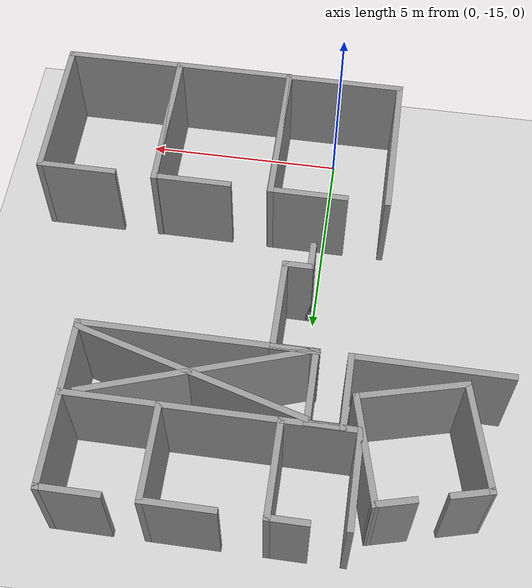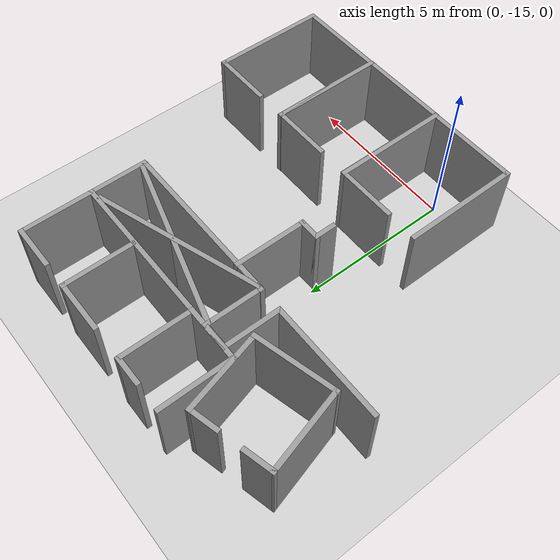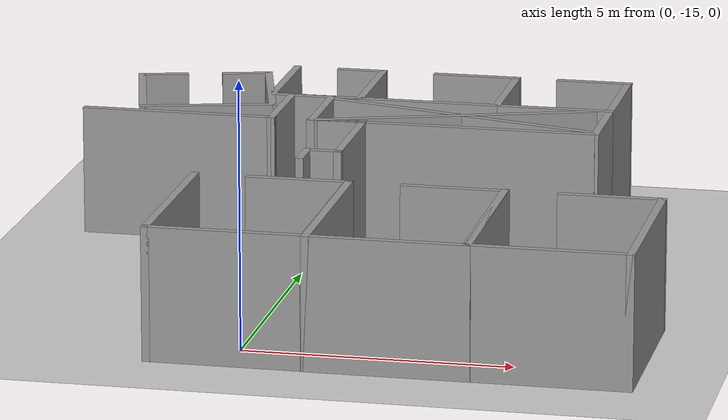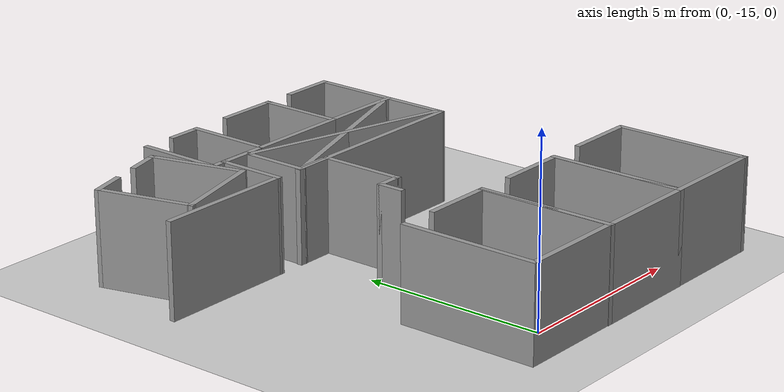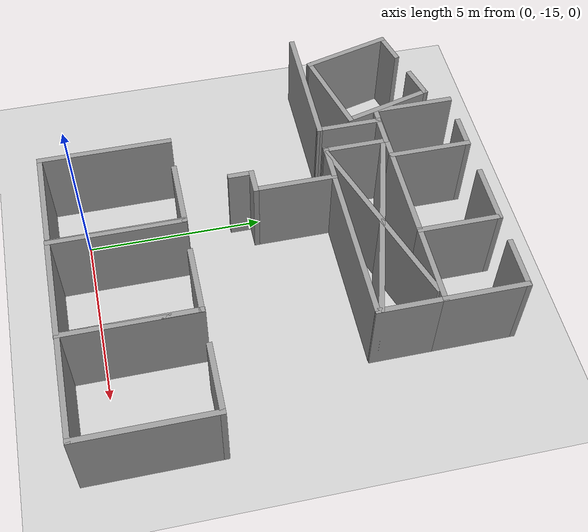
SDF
<sdf version="1.6">
 <world name="default">
  <model name="ground_plane">
   <static>1</static>
   <link name="link">
    <collision name="collision">
     <geometry><plane><normal>0 0 1</normal><size>100 100</size></plane></geometry>
     <surface><friction><ode><mu>100</mu><mu2>50</mu2></ode></friction></surface>
    </collision>
    <visual name="visual">
     <cast_shadows>0</cast_shadows>
     <geometry><plane><normal>0 0 1</normal><size>100 100</size></plane></geometry>
     <material>
      <script><uri>file://media/materials/scripts/gazebo.material</uri><name>Gazebo/Grey</name></script>
     </material>
    </visual>
   </link>
  </model>
  <model name="329_8">
   <pose>5.76303 -14.1144 0 0 -0 0</pose>
   <link name="Wall_0">
    <collision name="Wall_0_Collision">
     <geometry><box><size>3.81 0.15 2.5</size></box></geometry>
     <pose>0 0 1.25 0 -0 0</pose>
    </collision>
    <visual name="Wall_0_Visual">
     <pose>0 0 1.25 0 -0 0</pose>
     <geometry><box><size>3.81 0.15 2.5</size></box></geometry>
     <material>
      <script><uri>file://media/materials/scripts/gazebo.material</uri><name>Gazebo/Grey</name></script>
      <ambient>1 1 1 1</ambient>
     </material>
     <meta><layer>0</layer></meta>
    </visual>
    <pose>-1.449 0 0 0 -0 -1.5708</pose>
   </link>
   <link name="Wall_1">
    <collision name="Wall_1_Collision">
     <geometry><box><size>3.048 0.15 2.5</size></box></geometry>
     <pose>0 0 1.25 0 -0 0</pose>
    </collision>
    <visual name="Wall_1_Visual">
     <pose>0 0 1.25 0 -0 0</pose>
     <geometry><box><size>3.048 0.15 2.5</size></box></geometry>
     <material>
      <script><uri>file://media/materials/scripts/gazebo.material</uri><name>Gazebo/Grey</name></script>
      <ambient>1 1 1 1</ambient>
     </material>
     <meta><layer>0</layer></meta>
    </visual>
    <pose>-0 -1.83 0 0 -0 0</pose>
   </link>
   <link name="Wall_2">
    <collision name="Wall_2_Collision">
     <geometry><box><size>3.81 0.15 2.5</size></box></geometry>
     <pose>0 0 1.25 0 -0 0</pose>
    </collision>
    <visual name="Wall_2_Visual">
     <pose>0 0 1.25 0 -0 0</pose>
     <geometry><box><size>3.81 0.15 2.5</size></box></geometry>
     <material>
      <script><uri>file://media/materials/scripts/gazebo.material</uri><name>Gazebo/Grey</name></script>
      <ambient>1 1 1 1</ambient>
     </material>
     <meta><layer>0</layer></meta>
    </visual>
    <pose>1.449 0 0 0 -0 1.5708</pose>
   </link>
   <link name="Wall_5">
    <collision name="Wall_5_Collision">
     <geometry><box><size>2 0.15 2.5</size></box></geometry>
     <pose>0 0 1.25 0 -0 0</pose>
    </collision>
    <visual name="Wall_5_Visual">
     <pose>0 0 1.25 0 -0 0</pose>
     <geometry><box><size>2 0.15 2.5</size></box></geometry>
     <material>
      <script><uri>file://media/materials/scripts/gazebo.material</uri><name>Gazebo/Grey</name></script>
      <ambient>1 1 1 1</ambient>
     </material>
     <meta><layer>0</layer></meta>
    </visual>
    <pose>0.524 1.83 0 0 -0 3.14159</pose>
   </link>
   <static>1</static>
  </model>
  <model name="329_9">
   <pose>2.85575 -14.1248 0 0 -0 0</pose>
   <link name="Wall_0">
    <collision name="Wall_0_Collision">
     <geometry><box><size>3.81 0.15 2.5</size></box></geometry>
     <pose>0 0 1.25 0 -0 0</pose>
    </collision>
    <visual name="Wall_0_Visual">
     <pose>0 0 1.25 0 -0 0</pose>
     <geometry><box><size>3.81 0.15 2.5</size></box></geometry>
     <material>
      <script><uri>file://media/materials/scripts/gazebo.material</uri><name>Gazebo/Grey</name></script>
      <ambient>1 1 1 1</ambient>
     </material>
     <meta><layer>0</layer></meta>
    </visual>
    <pose>-1.449 0 0 0 -0 -1.5708</pose>
   </link>
   <link name="Wall_1">
    <collision name="Wall_1_Collision">
     <geometry><box><size>3.048 0.15 2.5</size></box></geometry>
     <pose>0 0 1.25 0 -0 0</pose>
    </collision>
    <visual name="Wall_1_Visual">
     <pose>0 0 1.25 0 -0 0</pose>
     <geometry><box><size>3.048 0.15 2.5</size></box></geometry>
     <material>
      <script><uri>file://media/materials/scripts/gazebo.material</uri><name>Gazebo/Grey</name></script>
      <ambient>1 1 1 1</ambient>
     </material>
     <meta><layer>0</layer></meta>
    </visual>
    <pose>-0 -1.83 0 0 -0 0</pose>
   </link>
   <link name="Wall_2">
    <collision name="Wall_2_Collision">
     <geometry><box><size>3.81 0.15 2.5</size></box></geometry>
     <pose>0 0 1.25 0 -0 0</pose>
    </collision>
    <visual name="Wall_2_Visual">
     <pose>0 0 1.25 0 -0 0</pose>
     <geometry><box><size>3.81 0.15 2.5</size></box></geometry>
     <material>
      <script><uri>file://media/materials/scripts/gazebo.material</uri><name>Gazebo/Grey</name></script>
      <ambient>1 1 1 1</ambient>
     </material>
     <meta><layer>0</layer></meta>
    </visual>
    <pose>1.449 0 0 0 -0 1.5708</pose>
   </link>
   <link name="Wall_5">
    <collision name="Wall_5_Collision">
     <geometry><box><size>2 0.15 2.5</size></box></geometry>
     <pose>0 0 1.25 0 -0 0</pose>
    </collision>
    <visual name="Wall_5_Visual">
     <pose>0 0 1.25 0 -0 0</pose>
     <geometry><box><size>2 0.15 2.5</size></box></geometry>
     <material>
      <script><uri>file://media/materials/scripts/gazebo.material</uri><name>Gazebo/Grey</name></script>
      <ambient>1 1 1 1</ambient>
     </material>
     <meta><layer>0</layer></meta>
    </visual>
    <pose>0.524 1.83 0 0 -0 3.14159</pose>
   </link>
   <static>1</static>
  </model>
  <model name="195_0">
   <pose>-2.77663 -6.09914 0 0 -0 0.254274</pose>
   <link name="Wall_52">
    <collision name="Wall_52_Collision">
     <geometry><box><size>2.667 0.15 2.5</size></box></geometry>
     <pose>0 0 1.25 0 -0 0</pose>
    </collision>
    <visual name="Wall_52_Visual">
     <pose>0 0 1.25 0 -0 0</pose>
     <geometry><box><size>2.667 0.15 2.5</size></box></geometry>
     <material>
      <script><uri>file://media/materials/scripts/gazebo.material</uri><name>Gazebo/Grey</name></script>
      <ambient>1 1 1 1</ambient>
     </material>
     <meta><layer>0</layer></meta>
    </visual>
    <pose>-0.000138 -1.2585 0 0 -0 0</pose>
   </link>
   <link name="Wall_53">
    <collision name="Wall_53_Collision">
     <geometry><box><size>2.667 0.15 2.5</size></box></geometry>
     <pose>0 0 1.25 0 -0 0</pose>
    </collision>
    <visual name="Wall_53_Visual">
     <pose>0 0 1.25 0 -0 0</pose>
     <geometry><box><size>2.667 0.15 2.5</size></box></geometry>
     <material>
      <script><uri>file://media/materials/scripts/gazebo.material</uri><name>Gazebo/Grey</name></script>
      <ambient>1 1 1 1</ambient>
     </material>
     <meta><layer>0</layer></meta>
    </visual>
    <pose>1.2585 0 0 0 -0 1.57069</pose>
   </link>
   <link name="Wall_55">
    <collision name="Wall_55_Collision">
     <geometry><box><size>2.667 0.15 2.5</size></box></geometry>
     <pose>0 0 1.25 0 -0 0</pose>
    </collision>
    <visual name="Wall_55_Visual">
     <pose>0 0 1.25 0 -0 0</pose>
     <geometry><box><size>2.667 0.15 2.5</size></box></geometry>
     <material>
      <script><uri>file://media/materials/scripts/gazebo.material</uri><name>Gazebo/Grey</name></script>
      <ambient>1 1 1 1</ambient>
     </material>
     <meta><layer>0</layer></meta>
    </visual>
    <pose>-1.2585 0 0 0 -0 -1.57091</pose>
   </link>
   <link name="Wall_57">
    <collision name="Wall_57_Collision">
     <geometry><box><size>1 0.15 2.5</size></box></geometry>
     <pose>0 0 1.25 0 -0 0</pose>
    </collision>
    <visual name="Wall_57_Visual">
     <pose>0 0 1.25 0 -0 0</pose>
     <geometry><box><size>1 0.15 2.5</size></box></geometry>
     <material>
      <script><uri>file://media/materials/scripts/gazebo.material</uri><name>Gazebo/Grey</name></script>
      <ambient>1 1 1 1</ambient>
     </material>
     <meta><layer>0</layer></meta>
    </visual>
    <pose>0.833639 1.2585 0 0 -0 3.14159</pose>
   </link>
   <link name="Wall_59">
    <collision name="Wall_59_Collision">
     <geometry><box><size>1 0.15 2.5</size></box></geometry>
     <pose>0 0 1.25 0 -0 0</pose>
    </collision>
    <visual name="Wall_59_Visual">
     <pose>0 0 1.25 0 -0 0</pose>
     <geometry><box><size>1 0.15 2.5</size></box></geometry>
     <material>
      <script><uri>file://media/materials/scripts/gazebo.material</uri><name>Gazebo/Grey</name></script>
      <ambient>1 1 1 1</ambient>
     </material>
     <meta><layer>0</layer></meta>
    </visual>
    <pose>-0.833361 1.2585 0 0 -0 3.14159</pose>
   </link>
   <static>1</static>
  </model>
  <model name="508">
   <pose>-1.97223 -8.50541 0 0 -0 0</pose>
   <link name="Wall_59">
    <collision name="Wall_59_Collision">
     <geometry><box><size>3.81 0.15 2.5</size></box></geometry>
     <pose>0 0 1.25 0 -0 0</pose>
    </collision>
    <visual name="Wall_59_Visual">
     <pose>0 0 1.25 0 -0 0</pose>
     <geometry><box><size>3.81 0.15 2.5</size></box></geometry>
     <material>
      <script><uri>file://media/materials/scripts/gazebo.material</uri><name>Gazebo/Grey</name></script>
      <ambient>1 1 1 1</ambient>
     </material>
     <meta><layer>0</layer></meta>
    </visual>
    <pose>-0.896867 0.544819 0 0 -0 -0.003726</pose>
   </link>
   <link name="Wall_60">
    <collision name="Wall_60_Collision">
     <geometry><box><size>1.905 0.15 2.5</size></box></geometry>
     <pose>0 0 1.25 0 -0 0</pose>
    </collision>
    <visual name="Wall_60_Visual">
     <pose>0 0 1.25 0 -0 0</pose>
     <geometry><box><size>1.905 0.15 2.5</size></box></geometry>
     <material>
      <script><uri>file://media/materials/scripts/gazebo.material</uri><name>Gazebo/Grey</name></script>
      <ambient>1 1 1 1</ambient>
     </material>
     <meta><layer>0</layer></meta>
    </visual>
    <pose>0.933132 1.4155 0 0 -0 1.5708</pose>
   </link>
   <link name="Wall_61">
    <collision name="Wall_61_Collision">
     <geometry><box><size>0.953 0.15 2.5</size></box></geometry>
     <pose>0 0 1.25 0 -0 0</pose>
    </collision>
    <visual name="Wall_61_Visual">
     <pose>0 0 1.25 0 -0 0</pose>
     <geometry><box><size>0.953 0.15 2.5</size></box></geometry>
     <material>
      <script><uri>file://media/materials/scripts/gazebo.material</uri><name>Gazebo/Grey</name></script>
      <ambient>1 1 1 1</ambient>
     </material>
     <meta><layer>0</layer></meta>
    </visual>
    <pose>1.33463 2.293 0 0 -0 0</pose>
   </link>
   <link name="Wall_62">
    <collision name="Wall_62_Collision">
     <geometry><box><size>1.905 0.15 2.5</size></box></geometry>
     <pose>0 0 1.25 0 -0 0</pose>
    </collision>
    <visual name="Wall_62_Visual">
     <pose>0 0 1.25 0 -0 0</pose>
     <geometry><box><size>1.905 0.15 2.5</size></box></geometry>
     <material>
      <script><uri>file://media/materials/scripts/gazebo.material</uri><name>Gazebo/Grey</name></script>
      <ambient>1 1 1 1</ambient>
     </material>
     <meta><layer>0</layer></meta>
    </visual>
    <pose>1.73613 1.4155 0 0 -0 -1.5708</pose>
   </link>
   <link name="Wall_63">
    <collision name="Wall_63_Collision">
     <geometry><box><size>1.141 0.15 2.5</size></box></geometry>
     <pose>0 0 1.25 0 -0 0</pose>
    </collision>
    <visual name="Wall_63_Visual">
     <pose>0 0 1.25 0 -0 0</pose>
     <geometry><box><size>1.141 0.15 2.5</size></box></geometry>
     <material>
      <script><uri>file://media/materials/scripts/gazebo.material</uri><name>Gazebo/Grey</name></script>
      <ambient>1 1 1 1</ambient>
     </material>
     <meta><layer>0</layer></meta>
    </visual>
    <pose>2.23163 0.538 0 0 -0 0</pose>
   </link>
   <link name="Wall_64">
    <collision name="Wall_64_Collision">
     <geometry><box><size>2.381 0.15 2.5</size></box></geometry>
     <pose>0 0 1.25 0 -0 0</pose>
    </collision>
    <visual name="Wall_64_Visual">
     <pose>0 0 1.25 0 -0 0</pose>
     <geometry><box><size>2.381 0.15 2.5</size></box></geometry>
     <material>
      <script><uri>file://media/materials/scripts/gazebo.material</uri><name>Gazebo/Grey</name></script>
      <ambient>1 1 1 1</ambient>
     </material>
     <meta><layer>0</layer></meta>
    </visual>
    <pose>2.72713 -0.5775 0 0 -0 -1.5708</pose>
   </link>
   <link name="Wall_65">
    <collision name="Wall_65_Collision">
     <geometry><box><size>0.75 0.15 2.5</size></box></geometry>
     <pose>0 0 1.25 0 -0 0</pose>
    </collision>
    <visual name="Wall_65_Visual">
     <pose>0 0 1.25 0 -0 0</pose>
     <geometry><box><size>0.75 0.15 2.5</size></box></geometry>
     <material>
      <script><uri>file://media/materials/scripts/gazebo.material</uri><name>Gazebo/Grey</name></script>
      <ambient>1 1 1 1</ambient>
     </material>
     <meta><layer>0</layer></meta>
    </visual>
    <pose>2.42713 -1.693 0 0 -0 3.14159</pose>
   </link>
   <link name="Wall_66">
    <collision name="Wall_66_Collision">
     <geometry><box><size>0.75 0.15 2.5</size></box></geometry>
     <pose>0 0 1.25 0 -0 0</pose>
    </collision>
    <visual name="Wall_66_Visual">
     <pose>0 0 1.25 0 -0 0</pose>
     <geometry><box><size>0.75 0.15 2.5</size></box></geometry>
     <material>
      <script><uri>file://media/materials/scripts/gazebo.material</uri><name>Gazebo/Grey</name></script>
      <ambient>1 1 1 1</ambient>
     </material>
     <meta><layer>0</layer></meta>
    </visual>
    <pose>2.12713 -1.993 0 0 -0 -1.5708</pose>
   </link>
   <static>1</static>
  </model>
  <model name="329_10">
   <pose>-0.056253 -14.1104 0 0 -0 0</pose>
   <link name="Wall_0">
    <collision name="Wall_0_Collision">
     <geometry><box><size>3.81 0.15 2.5</size></box></geometry>
     <pose>0 0 1.25 0 -0 0</pose>
    </collision>
    <visual name="Wall_0_Visual">
     <pose>0 0 1.25 0 -0 0</pose>
     <geometry><box><size>3.81 0.15 2.5</size></box></geometry>
     <material>
      <script><uri>file://media/materials/scripts/gazebo.material</uri><name>Gazebo/Grey</name></script>
      <ambient>1 1 1 1</ambient>
     </material>
     <meta><layer>0</layer></meta>
    </visual>
    <pose>-1.449 0 0 0 -0 -1.5708</pose>
   </link>
   <link name="Wall_1">
    <collision name="Wall_1_Collision">
     <geometry><box><size>3.048 0.15 2.5</size></box></geometry>
     <pose>0 0 1.25 0 -0 0</pose>
    </collision>
    <visual name="Wall_1_Visual">
     <pose>0 0 1.25 0 -0 0</pose>
     <geometry><box><size>3.048 0.15 2.5</size></box></geometry>
     <material>
      <script><uri>file://media/materials/scripts/gazebo.material</uri><name>Gazebo/Grey</name></script>
      <ambient>1 1 1 1</ambient>
     </material>
     <meta><layer>0</layer></meta>
    </visual>
    <pose>-0 -1.83 0 0 -0 0</pose>
   </link>
   <link name="Wall_2">
    <collision name="Wall_2_Collision">
     <geometry><box><size>3.81 0.15 2.5</size></box></geometry>
     <pose>0 0 1.25 0 -0 0</pose>
    </collision>
    <visual name="Wall_2_Visual">
     <pose>0 0 1.25 0 -0 0</pose>
     <geometry><box><size>3.81 0.15 2.5</size></box></geometry>
     <material>
      <script><uri>file://media/materials/scripts/gazebo.material</uri><name>Gazebo/Grey</name></script>
      <ambient>1 1 1 1</ambient>
     </material>
     <meta><layer>0</layer></meta>
    </visual>
    <pose>1.449 0 0 0 -0 1.5708</pose>
   </link>
   <link name="Wall_5">
    <collision name="Wall_5_Collision">
     <geometry><box><size>2 0.15 2.5</size></box></geometry>
     <pose>0 0 1.25 0 -0 0</pose>
    </collision>
    <visual name="Wall_5_Visual">
     <pose>0 0 1.25 0 -0 0</pose>
     <geometry><box><size>2 0.15 2.5</size></box></geometry>
     <material>
      <script><uri>file://media/materials/scripts/gazebo.material</uri><name>Gazebo/Grey</name></script>
      <ambient>1 1 1 1</ambient>
     </material>
     <meta><layer>0</layer></meta>
    </visual>
    <pose>0.524 1.83 0 0 -0 3.14159</pose>
   </link>
   <static>1</static>
  </model>
  <model name="505">
   <link name="Wall_71">
    <pose>-2.48078 0.011409 0 0 -0 0</pose>
    <visual name="Wall_71_Visual">
     <pose>0 0 1.25 0 -0 0</pose>
     <geometry><box><size>1.905 0.15 2.5</size></box></geometry>
     <material>
      <script><uri>file://media/materials/scripts/gazebo.material</uri><name>Gazebo/Grey</name></script>
      <ambient>1 1 1 1</ambient>
      <shader type="pixel"/>
     </material>
     <meta><layer>0</layer></meta>
    </visual>
    <collision name="Wall_71_Collision">
     <pose>0 0 1.25 0 -0 0</pose>
     <geometry><box><size>1.905 0.15 2.5</size></box></geometry>
     <surface>
      <friction>
       <ode><mu>1</mu><mu2>1</mu2><fdir1>0 0 0</fdir1><slip1>0</slip1><slip2>0</slip2></ode>
       <torsional>
        <coefficient>1</coefficient>
        <patch_radius>0</patch_radius>
        <surface_radius>0</surface_radius>
        <use_patch_radius>1</use_patch_radius>
        <ode><slip>0</slip></ode>
       </torsional>
      </friction>
      <bounce><restitution_coefficient>0</restitution_coefficient><threshold>1e+06</threshold></bounce>
      <contact>
       <collide_without_contact>0</collide_without_contact>
       <collide_without_contact_bitmask>1</collide_without_contact_bitmask>
       <collide_bitmask>1</collide_bitmask>
       <ode>
        <soft_cfm>0</soft_cfm>
        <soft_erp>0.2</soft_erp>
        <kp>1e+13</kp>
        <kd>1</kd>
        <max_vel>0.01</max_vel>
        <min_depth>0</min_depth>
       </ode>
       <bullet>
        <split_impulse>1</split_impulse>
        <split_impulse_penetration_threshold>-0.01</split_impulse_penetration_threshold>
        <soft_cfm>0</soft_cfm>
        <soft_erp>0.2</soft_erp>
        <kp>1e+13</kp>
        <kd>1</kd>
       </bullet>
      </contact>
     </surface>
    </collision>
   </link>
   <link name="Wall_72">
    <pose>-1.60328 1.12691 0 0 -0 1.5708</pose>
    <visual name="Wall_72_Visual">
     <pose>0 0 1.25 0 -0 0</pose>
     <geometry><box><size>2.381 0.15 2.5</size></box></geometry>
     <material>
      <script><uri>file://media/materials/scripts/gazebo.material</uri><name>Gazebo/Grey</name></script>
      <ambient>1 1 1 1</ambient>
      <shader type="pixel"/>
     </material>
     <meta><layer>0</layer></meta>
    </visual>
    <collision name="Wall_72_Collision">
     <pose>0 0 1.25 0 -0 0</pose>
     <geometry><box><size>2.381 0.15 2.5</size></box></geometry>
     <surface>
      <friction>
       <ode><mu>1</mu><mu2>1</mu2><fdir1>0 0 0</fdir1><slip1>0</slip1><slip2>0</slip2></ode>
       <torsional>
        <coefficient>1</coefficient>
        <patch_radius>0</patch_radius>
        <surface_radius>0</surface_radius>
        <use_patch_radius>1</use_patch_radius>
        <ode><slip>0</slip></ode>
       </torsional>
      </friction>
      <bounce><restitution_coefficient>0</restitution_coefficient><threshold>1e+06</threshold></bounce>
      <contact>
       <collide_without_contact>0</collide_without_contact>
       <collide_without_contact_bitmask>1</collide_without_contact_bitmask>
       <collide_bitmask>1</collide_bitmask>
       <ode>
        <soft_cfm>0</soft_cfm>
        <soft_erp>0.2</soft_erp>
        <kp>1e+13</kp>
        <kd>1</kd>
        <max_vel>0.01</max_vel>
        <min_depth>0</min_depth>
       </ode>
       <bullet>
        <split_impulse>1</split_impulse>
        <split_impulse_penetration_threshold>-0.01</split_impulse_penetration_threshold>
        <soft_cfm>0</soft_cfm>
        <soft_erp>0.2</soft_erp>
        <kp>1e+13</kp>
        <kd>1</kd>
       </bullet>
      </contact>
     </surface>
    </collision>
   </link>
   <link name="Wall_74">
    <pose>-3.35828 1.12691 0 0 0 -1.5708</pose>
    <visual name="Wall_74_Visual">
     <pose>0 0 1.25 0 -0 0</pose>
     <geometry><box><size>2.381 0.15 2.5</size></box></geometry>
     <material>
      <script><uri>file://media/materials/scripts/gazebo.material</uri><name>Gazebo/Grey</name></script>
      <ambient>1 1 1 1</ambient>
      <shader type="pixel"/>
     </material>
     <meta><layer>0</layer></meta>
    </visual>
    <collision name="Wall_74_Collision">
     <pose>0 0 1.25 0 -0 0</pose>
     <geometry><box><size>2.381 0.15 2.5</size></box></geometry>
     <surface>
      <friction>
       <ode><mu>1</mu><mu2>1</mu2><fdir1>0 0 0</fdir1><slip1>0</slip1><slip2>0</slip2></ode>
       <torsional>
        <coefficient>1</coefficient>
        <patch_radius>0</patch_radius>
        <surface_radius>0</surface_radius>
        <use_patch_radius>1</use_patch_radius>
        <ode><slip>0</slip></ode>
       </torsional>
      </friction>
      <bounce><restitution_coefficient>0</restitution_coefficient><threshold>1e+06</threshold></bounce>
      <contact>
       <collide_without_contact>0</collide_without_contact>
       <collide_without_contact_bitmask>1</collide_without_contact_bitmask>
       <collide_bitmask>1</collide_bitmask>
       <ode>
        <soft_cfm>0</soft_cfm>
        <soft_erp>0.2</soft_erp>
        <kp>1e+13</kp>
        <kd>1</kd>
        <max_vel>0.01</max_vel>
        <min_depth>0</min_depth>
       </ode>
       <bullet>
        <split_impulse>1</split_impulse>
        <split_impulse_penetration_threshold>-0.01</split_impulse_penetration_threshold>
        <soft_cfm>0</soft_cfm>
        <soft_erp>0.2</soft_erp>
        <kp>1e+13</kp>
        <kd>1</kd>
       </bullet>
      </contact>
     </surface>
    </collision>
   </link>
   <link name="Wall_76">
    <pose>-0.249281 0.011409 0 0 -0 0</pose>
    <visual name="Wall_76_Visual">
     <pose>0 0 1.25 0 -0 0</pose>
     <geometry><box><size>2.858 0.15 2.5</size></box></geometry>
     <material>
      <script><uri>file://media/materials/scripts/gazebo.material</uri><name>Gazebo/Grey</name></script>
      <ambient>1 1 1 1</ambient>
      <shader type="pixel"/>
     </material>
     <meta><layer>0</layer></meta>
    </visual>
    <collision name="Wall_76_Collision">
     <pose>0 0 1.25 0 -0 0</pose>
     <geometry><box><size>2.858 0.15 2.5</size></box></geometry>
     <surface>
      <friction>
       <ode><mu>1</mu><mu2>1</mu2><fdir1>0 0 0</fdir1><slip1>0</slip1><slip2>0</slip2></ode>
       <torsional>
        <coefficient>1</coefficient>
        <patch_radius>0</patch_radius>
        <surface_radius>0</surface_radius>
        <use_patch_radius>1</use_patch_radius>
        <ode><slip>0</slip></ode>
       </torsional>
      </friction>
      <bounce><restitution_coefficient>0</restitution_coefficient><threshold>1e+06</threshold></bounce>
      <contact>
       <collide_without_contact>0</collide_without_contact>
       <collide_without_contact_bitmask>1</collide_without_contact_bitmask>
       <collide_bitmask>1</collide_bitmask>
       <ode>
        <soft_cfm>0</soft_cfm>
        <soft_erp>0.2</soft_erp>
        <kp>1e+13</kp>
        <kd>1</kd>
        <max_vel>0.01</max_vel>
        <min_depth>0</min_depth>
       </ode>
       <bullet>
        <split_impulse>1</split_impulse>
        <split_impulse_penetration_threshold>-0.01</split_impulse_penetration_threshold>
        <soft_cfm>0</soft_cfm>
        <soft_erp>0.2</soft_erp>
        <kp>1e+13</kp>
        <kd>1</kd>
       </bullet>
      </contact>
     </surface>
    </collision>
   </link>
   <link name="Wall_77">
    <pose>1.10472 1.12691 0 0 -0 1.5708</pose>
    <visual name="Wall_77_Visual">
     <pose>0 0 1.25 0 -0 0</pose>
     <geometry><box><size>2.381 0.15 2.5</size></box></geometry>
     <material>
      <script><uri>file://media/materials/scripts/gazebo.material</uri><name>Gazebo/Grey</name></script>
      <ambient>1 1 1 1</ambient>
      <shader type="pixel"/>
     </material>
     <meta><layer>0</layer></meta>
    </visual>
    <collision name="Wall_77_Collision">
     <pose>0 0 1.25 0 -0 0</pose>
     <geometry><box><size>2.381 0.15 2.5</size></box></geometry>
     <surface>
      <friction>
       <ode><mu>1</mu><mu2>1</mu2><fdir1>0 0 0</fdir1><slip1>0</slip1><slip2>0</slip2></ode>
       <torsional>
        <coefficient>1</coefficient>
        <patch_radius>0</patch_radius>
        <surface_radius>0</surface_radius>
        <use_patch_radius>1</use_patch_radius>
        <ode><slip>0</slip></ode>
       </torsional>
      </friction>
      <bounce><restitution_coefficient>0</restitution_coefficient><threshold>1e+06</threshold></bounce>
      <contact>
       <collide_without_contact>0</collide_without_contact>
       <collide_without_contact_bitmask>1</collide_without_contact_bitmask>
       <collide_bitmask>1</collide_bitmask>
       <ode>
        <soft_cfm>0</soft_cfm>
        <soft_erp>0.2</soft_erp>
        <kp>1e+13</kp>
        <kd>1</kd>
        <max_vel>0.01</max_vel>
        <min_depth>0</min_depth>
       </ode>
       <bullet>
        <split_impulse>1</split_impulse>
        <split_impulse_penetration_threshold>-0.01</split_impulse_penetration_threshold>
        <soft_cfm>0</soft_cfm>
        <soft_erp>0.2</soft_erp>
        <kp>1e+13</kp>
        <kd>1</kd>
       </bullet>
      </contact>
     </surface>
    </collision>
   </link>
   <link name="Wall_80">
    <pose>2.22028 0.011216 0 0 0 -0.000173</pose>
    <visual name="Wall_80_Visual">
     <pose>0 0 1.25 0 -0 0</pose>
     <geometry><box><size>2.381 0.15 2.5</size></box></geometry>
     <material>
      <script><uri>file://media/materials/scripts/gazebo.material</uri><name>Gazebo/Grey</name></script>
      <ambient>1 1 1 1</ambient>
      <shader type="pixel"/>
     </material>
     <meta><layer>0</layer></meta>
    </visual>
    <collision name="Wall_80_Collision">
     <pose>0 0 1.25 0 -0 0</pose>
     <geometry><box><size>2.381 0.15 2.5</size></box></geometry>
     <surface>
      <friction>
       <ode><mu>1</mu><mu2>1</mu2><fdir1>0 0 0</fdir1><slip1>0</slip1><slip2>0</slip2></ode>
       <torsional>
        <coefficient>1</coefficient>
        <patch_radius>0</patch_radius>
        <surface_radius>0</surface_radius>
        <use_patch_radius>1</use_patch_radius>
        <ode><slip>0</slip></ode>
       </torsional>
      </friction>
      <bounce><restitution_coefficient>0</restitution_coefficient><threshold>1e+06</threshold></bounce>
      <contact>
       <collide_without_contact>0</collide_without_contact>
       <collide_without_contact_bitmask>1</collide_without_contact_bitmask>
       <collide_bitmask>1</collide_bitmask>
       <ode>
        <soft_cfm>0</soft_cfm>
        <soft_erp>0.2</soft_erp>
        <kp>1e+13</kp>
        <kd>1</kd>
        <max_vel>0.01</max_vel>
        <min_depth>0</min_depth>
       </ode>
       <bullet>
        <split_impulse>1</split_impulse>
        <split_impulse_penetration_threshold>-0.01</split_impulse_penetration_threshold>
        <soft_cfm>0</soft_cfm>
        <soft_erp>0.2</soft_erp>
        <kp>1e+13</kp>
        <kd>1</kd>
       </bullet>
      </contact>
     </surface>
    </collision>
   </link>
   <link name="Wall_81">
    <pose>3.33585 1.12652 0 0 -0 1.5708</pose>
    <visual name="Wall_81_Visual">
     <pose>0 0 1.25 0 -0 0</pose>
     <geometry><box><size>2.381 0.15 2.5</size></box></geometry>
     <material>
      <script><uri>file://media/materials/scripts/gazebo.material</uri><name>Gazebo/Grey</name></script>
      <ambient>1 1 1 1</ambient>
      <shader type="pixel"/>
     </material>
     <meta><layer>0</layer></meta>
    </visual>
    <collision name="Wall_81_Collision">
     <pose>0 0 1.25 0 -0 0</pose>
     <geometry><box><size>2.381 0.15 2.5</size></box></geometry>
     <surface>
      <friction>
       <ode><mu>1</mu><mu2>1</mu2><fdir1>0 0 0</fdir1><slip1>0</slip1><slip2>0</slip2></ode>
       <torsional>
        <coefficient>1</coefficient>
        <patch_radius>0</patch_radius>
        <surface_radius>0</surface_radius>
        <use_patch_radius>1</use_patch_radius>
        <ode><slip>0</slip></ode>
       </torsional>
      </friction>
      <bounce><restitution_coefficient>0</restitution_coefficient><threshold>1e+06</threshold></bounce>
      <contact>
       <collide_without_contact>0</collide_without_contact>
       <collide_without_contact_bitmask>1</collide_without_contact_bitmask>
       <collide_bitmask>1</collide_bitmask>
       <ode>
        <soft_cfm>0</soft_cfm>
        <soft_erp>0.2</soft_erp>
        <kp>1e+13</kp>
        <kd>1</kd>
        <max_vel>0.01</max_vel>
        <min_depth>0</min_depth>
       </ode>
       <bullet>
        <split_impulse>1</split_impulse>
        <split_impulse_penetration_threshold>-0.01</split_impulse_penetration_threshold>
        <soft_cfm>0</soft_cfm>
        <soft_erp>0.2</soft_erp>
        <kp>1e+13</kp>
        <kd>1</kd>
       </bullet>
      </contact>
     </surface>
    </collision>
   </link>
   <link name="Wall_84">
    <pose>2.66085 2.24202 0 0 -0 3.14159</pose>
    <visual name="Wall_84_Visual">
     <pose>0 0 1.25 0 -0 0</pose>
     <geometry><box><size>1.5 0.15 2.5</size></box></geometry>
     <material>
      <script><uri>file://media/materials/scripts/gazebo.material</uri><name>Gazebo/Grey</name></script>
      <ambient>1 1 1 1</ambient>
      <shader type="pixel"/>
     </material>
     <meta><layer>0</layer></meta>
    </visual>
    <collision name="Wall_84_Collision">
     <pose>0 0 1.25 0 -0 0</pose>
     <geometry><box><size>1.5 0.15 2.5</size></box></geometry>
     <surface>
      <friction>
       <ode><mu>1</mu><mu2>1</mu2><fdir1>0 0 0</fdir1><slip1>0</slip1><slip2>0</slip2></ode>
       <torsional>
        <coefficient>1</coefficient>
        <patch_radius>0</patch_radius>
        <surface_radius>0</surface_radius>
        <use_patch_radius>1</use_patch_radius>
        <ode><slip>0</slip></ode>
       </torsional>
      </friction>
      <bounce><restitution_coefficient>0</restitution_coefficient><threshold>1e+06</threshold></bounce>
      <contact>
       <collide_without_contact>0</collide_without_contact>
       <collide_without_contact_bitmask>1</collide_without_contact_bitmask>
       <collide_bitmask>1</collide_bitmask>
       <ode>
        <soft_cfm>0</soft_cfm>
        <soft_erp>0.2</soft_erp>
        <kp>1e+13</kp>
        <kd>1</kd>
        <max_vel>0.01</max_vel>
        <min_depth>0</min_depth>
       </ode>
       <bullet>
        <split_impulse>1</split_impulse>
        <split_impulse_penetration_threshold>-0.01</split_impulse_penetration_threshold>
        <soft_cfm>0</soft_cfm>
        <soft_erp>0.2</soft_erp>
        <kp>1e+13</kp>
        <kd>1</kd>
       </bullet>
      </contact>
     </surface>
    </collision>
   </link>
   <link name="Wall_86">
    <pose>0.304719 2.24241 0 0 -0 3.14159</pose>
    <visual name="Wall_86_Visual">
     <pose>0 0 1.25 0 -0 0</pose>
     <geometry><box><size>1.75 0.15 2.5</size></box></geometry>
     <material>
      <script><uri>file://media/materials/scripts/gazebo.material</uri><name>Gazebo/Grey</name></script>
      <ambient>1 1 1 1</ambient>
      <shader type="pixel"/>
     </material>
     <meta><layer>0</layer></meta>
    </visual>
    <collision name="Wall_86_Collision">
     <pose>0 0 1.25 0 -0 0</pose>
     <geometry><box><size>1.75 0.15 2.5</size></box></geometry>
     <surface>
      <friction>
       <ode><mu>1</mu><mu2>1</mu2><fdir1>0 0 0</fdir1><slip1>0</slip1><slip2>0</slip2></ode>
       <torsional>
        <coefficient>1</coefficient>
        <patch_radius>0</patch_radius>
        <surface_radius>0</surface_radius>
        <use_patch_radius>1</use_patch_radius>
        <ode><slip>0</slip></ode>
       </torsional>
      </friction>
      <bounce><restitution_coefficient>0</restitution_coefficient><threshold>1e+06</threshold></bounce>
      <contact>
       <collide_without_contact>0</collide_without_contact>
       <collide_without_contact_bitmask>1</collide_without_contact_bitmask>
       <collide_bitmask>1</collide_bitmask>
       <ode>
        <soft_cfm>0</soft_cfm>
        <soft_erp>0.2</soft_erp>
        <kp>1e+13</kp>
        <kd>1</kd>
        <max_vel>0.01</max_vel>
        <min_depth>0</min_depth>
       </ode>
       <bullet>
        <split_impulse>1</split_impulse>
        <split_impulse_penetration_threshold>-0.01</split_impulse_penetration_threshold>
        <soft_cfm>0</soft_cfm>
        <soft_erp>0.2</soft_erp>
        <kp>1e+13</kp>
        <kd>1</kd>
       </bullet>
      </contact>
     </surface>
    </collision>
   </link>
   <link name="Wall_88">
    <pose>-2.02828 2.24241 0 0 -0 3.14159</pose>
    <visual name="Wall_88_Visual">
     <pose>0 0 1.25 0 -0 0</pose>
     <geometry><box><size>1 0.15 2.5</size></box></geometry>
     <material>
      <script><uri>file://media/materials/scripts/gazebo.material</uri><name>Gazebo/Grey</name></script>
      <ambient>1 1 1 1</ambient>
      <shader type="pixel"/>
     </material>
     <meta><layer>0</layer></meta>
    </visual>
    <collision name="Wall_88_Collision">
     <pose>0 0 1.25 0 -0 0</pose>
     <geometry><box><size>1 0.15 2.5</size></box></geometry>
     <surface>
      <friction>
       <ode><mu>1</mu><mu2>1</mu2><fdir1>0 0 0</fdir1><slip1>0</slip1><slip2>0</slip2></ode>
       <torsional>
        <coefficient>1</coefficient>
        <patch_radius>0</patch_radius>
        <surface_radius>0</surface_radius>
        <use_patch_radius>1</use_patch_radius>
        <ode><slip>0</slip></ode>
       </torsional>
      </friction>
      <bounce><restitution_coefficient>0</restitution_coefficient><threshold>1e+06</threshold></bounce>
      <contact>
       <collide_without_contact>0</collide_without_contact>
       <collide_without_contact_bitmask>1</collide_without_contact_bitmask>
       <collide_bitmask>1</collide_bitmask>
       <ode>
        <soft_cfm>0</soft_cfm>
        <soft_erp>0.2</soft_erp>
        <kp>1e+13</kp>
        <kd>1</kd>
        <max_vel>0.01</max_vel>
        <min_depth>0</min_depth>
       </ode>
       <bullet>
        <split_impulse>1</split_impulse>
        <split_impulse_penetration_threshold>-0.01</split_impulse_penetration_threshold>
        <soft_cfm>0</soft_cfm>
        <soft_erp>0.2</soft_erp>
        <kp>1e+13</kp>
        <kd>1</kd>
       </bullet>
      </contact>
     </surface>
    </collision>
   </link>
   <link name="Wall_91">
    <pose>3.33585 -0.928117 0 0 0 -1.5708</pose>
    <inertial>
     <inertia><ixx>0</ixx><ixy>0</ixy><ixz>0</ixz><iyy>0</iyy><iyz>0</iyz><izz>0</izz></inertia>
     <mass>0</mass>
    </inertial>
    <visual name="Wall_91_Visual">
     <pose>0 0 1.25 0 -0 0</pose>
     <geometry><box><size>1.81862 0.15 2.5</size></box></geometry>
     <material>
      <script><uri>file://media/materials/scripts/gazebo.material</uri><name>Gazebo/Grey</name></script>
      <ambient>1 1 1 1</ambient>
      <shader type="pixel"/>
     </material>
     <meta><layer>0</layer></meta>
    </visual>
    <collision name="Wall_91_Collision">
     <pose>0 0 1.25 0 -0 0</pose>
     <geometry><box><size>1.81862 0.15 2.5</size></box></geometry>
     <surface>
      <friction>
       <ode><mu>1</mu><mu2>1</mu2><fdir1>0 0 0</fdir1><slip1>0</slip1><slip2>0</slip2></ode>
       <torsional>
        <coefficient>1</coefficient>
        <patch_radius>0</patch_radius>
        <surface_radius>0</surface_radius>
        <use_patch_radius>1</use_patch_radius>
        <ode><slip>0</slip></ode>
       </torsional>
      </friction>
      <bounce><restitution_coefficient>0</restitution_coefficient><threshold>1e+06</threshold></bounce>
      <contact>
       <collide_without_contact>0</collide_without_contact>
       <collide_without_contact_bitmask>1</collide_without_contact_bitmask>
       <collide_bitmask>1</collide_bitmask>
       <ode>
        <soft_cfm>0</soft_cfm>
        <soft_erp>0.2</soft_erp>
        <kp>1e+13</kp>
        <kd>1</kd>
        <max_vel>0.01</max_vel>
        <min_depth>0</min_depth>
       </ode>
       <bullet>
        <split_impulse>1</split_impulse>
        <split_impulse_penetration_threshold>-0.01</split_impulse_penetration_threshold>
        <soft_cfm>0</soft_cfm>
        <soft_erp>0.2</soft_erp>
        <kp>1e+13</kp>
        <kd>1</kd>
       </bullet>
      </contact>
     </surface>
    </collision>
   </link>
   <link name="Wall_92">
    <pose>0.535851 -1.77058 0 0 -0 3.14159</pose>
    <inertial>
     <inertia><ixx>0</ixx><ixy>0</ixy><ixz>0</ixz><iyy>0</iyy><iyz>0</iyz><izz>0</izz></inertia>
     <mass>0</mass>
    </inertial>
    <visual name="Wall_92_Visual">
     <pose>0 0 1.25 0 -0 0</pose>
     <geometry><box><size>5.60653 0.15 2.5</size></box></geometry>
     <material>
      <script><uri>file://media/materials/scripts/gazebo.material</uri><name>Gazebo/Grey</name></script>
      <ambient>1 1 1 1</ambient>
      <shader type="pixel"/>
     </material>
     <meta><layer>0</layer></meta>
    </visual>
    <collision name="Wall_92_Collision">
     <pose>0 0 1.25 0 -0 0</pose>
     <geometry><box><size>5.60653 0.15 2.5</size></box></geometry>
     <surface>
      <friction>
       <ode><mu>1</mu><mu2>1</mu2><fdir1>0 0 0</fdir1><slip1>0</slip1><slip2>0</slip2></ode>
       <torsional>
        <coefficient>1</coefficient>
        <patch_radius>0</patch_radius>
        <surface_radius>0</surface_radius>
        <use_patch_radius>1</use_patch_radius>
        <ode><slip>0</slip></ode>
       </torsional>
      </friction>
      <bounce><restitution_coefficient>0</restitution_coefficient><threshold>1e+06</threshold></bounce>
      <contact>
       <collide_without_contact>0</collide_without_contact>
       <collide_without_contact_bitmask>1</collide_without_contact_bitmask>
       <collide_bitmask>1</collide_bitmask>
       <ode>
        <soft_cfm>0</soft_cfm>
        <soft_erp>0.2</soft_erp>
        <kp>1e+13</kp>
        <kd>1</kd>
        <max_vel>0.01</max_vel>
        <min_depth>0</min_depth>
       </ode>
       <bullet>
        <split_impulse>1</split_impulse>
        <split_impulse_penetration_threshold>-0.01</split_impulse_penetration_threshold>
        <soft_cfm>0</soft_cfm>
        <soft_erp>0.2</soft_erp>
        <kp>1e+13</kp>
        <kd>1</kd>
       </bullet>
      </contact>
     </surface>
    </collision>
   </link>
   <link name="Wall_94">
    <pose>0.474662 -0.921334 0 0 -0 0.322432</pose>
    <inertial>
     <inertia><ixx>0</ixx><ixy>0</ixy><ixz>0</ixz><iyy>0</iyy><iyz>0</iyz><izz>0</izz></inertia>
     <mass>0</mass>
    </inertial>
    <visual name="Wall_94_Visual">
     <pose>0 0 1.25 0 -0 0</pose>
     <geometry><box><size>5.49267 0.15 2.5</size></box></geometry>
     <material>
      <script><uri>file://media/materials/scripts/gazebo.material</uri><name>Gazebo/Grey</name></script>
      <ambient>1 1 1 1</ambient>
      <shader type="pixel"/>
     </material>
     <meta><layer>0</layer></meta>
    </visual>
    <collision name="Wall_94_Collision">
     <pose>0 0 1.25 0 -0 0</pose>
     <geometry><box><size>5.49267 0.15 2.5</size></box></geometry>
     <surface>
      <friction>
       <ode><mu>1</mu><mu2>1</mu2><fdir1>0 0 0</fdir1><slip1>0</slip1><slip2>0</slip2></ode>
       <torsional>
        <coefficient>1</coefficient>
        <patch_radius>0</patch_radius>
        <surface_radius>0</surface_radius>
        <use_patch_radius>1</use_patch_radius>
        <ode><slip>0</slip></ode>
       </torsional>
      </friction>
      <bounce><restitution_coefficient>0</restitution_coefficient><threshold>1e+06</threshold></bounce>
      <contact>
       <collide_without_contact>0</collide_without_contact>
       <collide_without_contact_bitmask>1</collide_without_contact_bitmask>
       <collide_bitmask>1</collide_bitmask>
       <ode>
        <soft_cfm>0</soft_cfm>
        <soft_erp>0.2</soft_erp>
        <kp>1e+13</kp>
        <kd>1</kd>
        <max_vel>0.01</max_vel>
        <min_depth>0</min_depth>
       </ode>
       <bullet>
        <split_impulse>1</split_impulse>
        <split_impulse_penetration_threshold>-0.01</split_impulse_penetration_threshold>
        <soft_cfm>0</soft_cfm>
        <soft_erp>0.2</soft_erp>
        <kp>1e+13</kp>
        <kd>1</kd>
       </bullet>
      </contact>
     </surface>
    </collision>
   </link>
   <link name="Wall_99">
    <pose>0.595831 -0.880253 0 0 -0 2.86113</pose>
    <inertial>
     <inertia><ixx>0</ixx><ixy>0</ixy><ixz>0</ixz><iyy>0</iyy><iyz>0</iyz><izz>0</izz></inertia>
     <mass>0</mass>
    </inertial>
    <visual name="Wall_99_Visual">
     <pose>0 0 1.25 0 -0 0</pose>
     <geometry><box><size>5.81605 0.15 2.5</size></box></geometry>
     <material>
      <script><uri>file://media/materials/scripts/gazebo.material</uri><name>Gazebo/Grey</name></script>
      <ambient>1 1 1 1</ambient>
      <shader type="pixel"/>
     </material>
     <meta><layer>0</layer></meta>
    </visual>
    <collision name="Wall_99_Collision">
     <pose>0 0 1.25 0 -0 0</pose>
     <geometry><box><size>5.81605 0.15 2.5</size></box></geometry>
     <surface>
      <friction>
       <ode><mu>1</mu><mu2>1</mu2><fdir1>0 0 0</fdir1><slip1>0</slip1><slip2>0</slip2></ode>
       <torsional>
        <coefficient>1</coefficient>
        <patch_radius>0</patch_radius>
        <surface_radius>0</surface_radius>
        <use_patch_radius>1</use_patch_radius>
        <ode><slip>0</slip></ode>
       </torsional>
      </friction>
      <bounce><restitution_coefficient>0</restitution_coefficient><threshold>1e+06</threshold></bounce>
      <contact>
       <collide_without_contact>0</collide_without_contact>
       <collide_without_contact_bitmask>1</collide_without_contact_bitmask>
       <collide_bitmask>1</collide_bitmask>
       <ode>
        <soft_cfm>0</soft_cfm>
        <soft_erp>0.2</soft_erp>
        <kp>1e+13</kp>
        <kd>1</kd>
        <max_vel>0.01</max_vel>
        <min_depth>0</min_depth>
       </ode>
       <bullet>
        <split_impulse>1</split_impulse>
        <split_impulse_penetration_threshold>-0.01</split_impulse_penetration_threshold>
        <soft_cfm>0</soft_cfm>
        <soft_erp>0.2</soft_erp>
        <kp>1e+13</kp>
        <kd>1</kd>
       </bullet>
      </contact>
     </surface>
    </collision>
   </link>
   <static>1</static>
   <pose>1.93172 -6.20735 0 0 -0 0</pose>
  </model>
 </world>
</sdf>
